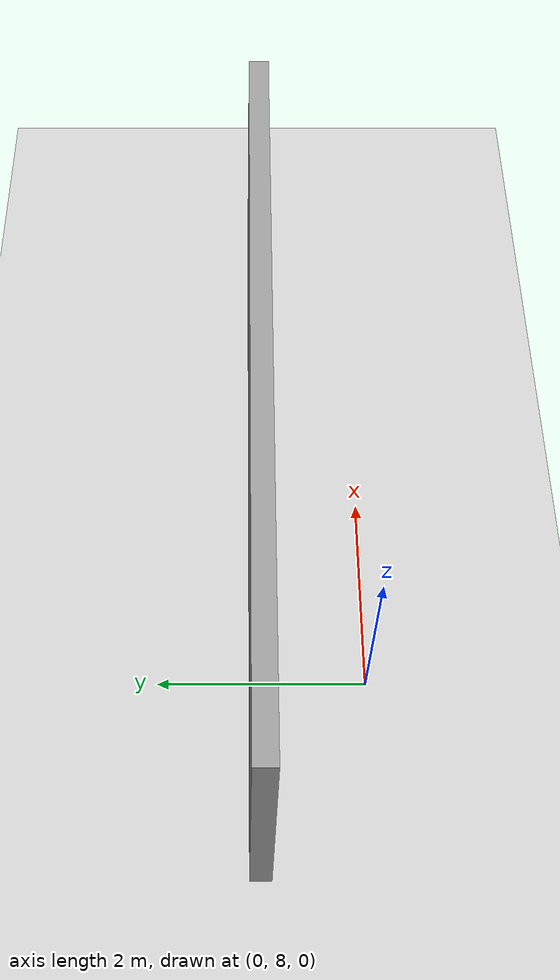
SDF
<sdf version="1.7">
 <world name="default">
  <model name="ground_plane">
   <static>1</static>
   <link name="link">
    <collision name="collision">
     <geometry><plane><normal>0 0 1</normal><size>100 100</size></plane></geometry>
     <surface>
      <contact><collide_bitmask>65535</collide_bitmask></contact>
      <friction><ode><mu>100</mu><mu2>50</mu2></ode></friction>
     </surface>
    </collision>
    <visual name="visual">
     <cast_shadows>0</cast_shadows>
     <geometry><plane><normal>0 0 1</normal><size>100 100</size></plane></geometry>
     <material>
      <script><uri>file://media/materials/scripts/gazebo.material</uri><name>Gazebo/Grey</name></script>
     </material>
    </visual>
   </link>
  </model>
  <model name="grey_wall">
   <static>1</static>
   <link name="link">
    <pose>0 0 1.4 0 -0 0</pose>
    <collision name="collision"><geometry><box><size>7.5 0.2 2.8</size></box></geometry></collision>
    <visual name="visual">
     <cast_shadows>0</cast_shadows>
     <geometry><box><size>7.5 0.2 2.8</size></box></geometry>
     <material>
      <script>
       <uri>model://grey_wall/materials/scripts</uri>
       <uri>model://grey_wall/materials/textures</uri>
       <name>vrc/grey_wall</name>
      </script>
     </material>
    </visual>
   </link>
   <pose>1.88883 9.01994 0 0 -0 0</pose>
  </model>
 </world>
</sdf>
